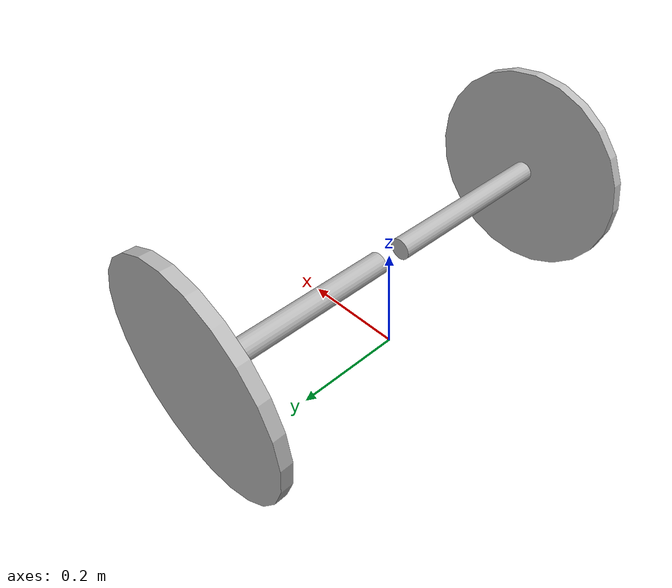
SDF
<?xml version="1.0" ?>
<sdf version="1.5">
  <model name='wheel'>
    <link name="left_link">
      <pose>0 0.38 0.2 0 1.5707 1.5707</pose>
      <inertial>
        <pose>0 0 0 0 0 0</pose>
        <mass>0.05</mass>
        <inertia>
          <ixx>5.0167e-4</ixx>
          <ixy>0</ixy>
          <ixz>0</ixz>
          <iyy>1e-3</iyy>
          <iyz>0</iyz>
          <izz>5.0167e-4</izz>
        </inertia>
      </inertial>
      <collision name="collision">
        <geometry>
          <cylinder>
            <radius>.2</radius>
            <length>.02</length>
          </cylinder>
        </geometry>
        <surface>
          <friction>
            <ode>
              <mu>1.0</mu>
              <mu2>50.0</mu2>
              <fdir1>0 0 1</fdir1>
              <slip1>0.0</slip1>
              <slip2>0.0</slip2>
            </ode>
          </friction>
          <contact>
            <ode>
              <min_depth>0.005</min_depth>
              <kp>1e8</kp>
            </ode>
          </contact>
        </surface>
      </collision>

      <visual name="visual">
        <geometry>
          <cylinder>
            <radius>.2</radius>
            <length>.02</length>
          </cylinder>
        </geometry>
      </visual>
    </link>

     <link name="left_stick">
      <pose>0 0.2 0.2 0 1.5707 1.5707</pose>
      <inertial>
        <pose>0 0 0 0 0 0</pose>
        <mass>1e-6</mass>
        <inertia>
          <ixx>1.031e-8</ixx>
          <ixy>0</ixy>
          <ixz>0</ixz>
          <iyy>2e-10</iyy>
          <iyz>0</iyz>
          <izz>1.031e-8</izz>
        </inertia>
      </inertial>
      <collision name="collision">
        <geometry>
          <cylinder>
            <radius>.02</radius>
            <length>0.35</length>
          </cylinder>
        </geometry>
      </collision>

      <visual name="visual">
        <geometry>
          <cylinder>
            <radius>.02</radius>
            <length>0.35</length>
          </cylinder>
        </geometry>
      </visual>
    </link>

    <link name="right_link">
      <pose>0 -0.38 0.2 0 1.5707 1.5707</pose>
      <inertial>
        <pose>0 0 0 0 0 0</pose>
        <mass>0.05</mass>
        <inertia>
          <ixx>5.0167e-4</ixx>
          <ixy>0</ixy>
          <ixz>0</ixz>
          <iyy>1e-3</iyy>
          <iyz>0</iyz>
          <izz>5.0167e-4</izz>
        </inertia>
      </inertial>
      <collision name="collision">
        <geometry>
          <cylinder>
            <radius>.2</radius>
            <length>.02</length>
          </cylinder>
        </geometry>
        <surface>
          <friction>
            <ode>
              <mu>1.0</mu>
              <mu2>50.0</mu2>
              <fdir1>0 0 1</fdir1>
              <slip1>0.0</slip1>
              <slip2>0.0</slip2>
            </ode>
          </friction>
          <contact>
            <ode>
              <min_depth>0.005</min_depth>
              <kp>1e8</kp>
            </ode>
          </contact>
        </surface>
      </collision>

      <visual name="visual">
        <geometry>
          <cylinder>
            <radius>.2</radius>
            <length>.02</length>
          </cylinder>
        </geometry>
      </visual>
    </link>
    <link name="right_stick">
      <pose>0 -0.2 0.2 0 1.5707 1.5707</pose>
      <inertial>
        <pose>0 0 0 0 0 0</pose>
        <mass>1e-6</mass>
        <inertia>
          <ixx>1.031e-8</ixx>
          <ixy>0</ixy>
          <ixz>0</ixz>
          <iyy>2e-10</iyy>
          <iyz>0</iyz>
          <izz>1.031e-8</izz>
        </inertia>
      </inertial>
      <collision name="collision">
        <geometry>
          <cylinder>
            <radius>.02</radius>
            <length>0.35</length>
          </cylinder>
        </geometry>
      </collision>

      <visual name="visual">
        <geometry>
          <cylinder>
            <radius>.02</radius>
            <length>0.35</length>
          </cylinder>
        </geometry>
      </visual>
    </link>

    <joint name="left_stick_joint" type="fixed">
      <child>left_link</child>
      <parent>iris::base_link</parent>
      <axis>
        <xyz>0 1 0</xyz>
          <upper>0</upper>
          <lower>0</lower>
          <effort>0</effort>
          <velocity>0</velocity>
      </axis>
    </joint>

  <joint name="left_wheel_joint" type="revolute">
      <child>left_stick</child>
      <parent>left_link</parent>
      <axis>
        <xyz>0 1 0</xyz>
        <limit>
          <upper>-1e+16</upper>
          <lower>1e+16</lower>
        </limit>
        <dynamics>
          <spring_reference>0</spring_reference>
          <spring_stiffness>0</spring_stiffness>
        </dynamics>
        <use_parent_model_frame>true</use_parent_model_frame>
      </axis>
    </joint>

   <joint name="right_stick_joint" type="fixed">
      <child>right_link</child>
      <parent>iris::base_link</parent>
      <axis>
        <xyz>0 1 0</xyz>
        <limit>
          <upper>0</upper>
          <lower>0</lower>
          <effort>0</effort>
          <velocity>0</velocity>
        </limit>
      </axis>
    </joint>

    <joint name="right_wheel_joint" type="revolute">
      <child>right_stick</child>
      <parent>right_link</parent>
      <axis>
        <xyz>0 1 0</xyz>
        <limit>
          <upper>-1e+16</upper>
          <lower>1e+16</lower>
        </limit>
        <dynamics>
          <spring_reference>0</spring_reference>
          <spring_stiffness>0</spring_stiffness>
        </dynamics>
        <use_parent_model_frame>true</use_parent_model_frame>
      </axis>
    </joint>

    <joint name="left_zc_joint" type="revolute">
      <child>left_link</child>
      <parent>left_stick</parent>
      <axis>
        <xyz>0 1 0</xyz>
        <limit>
          <upper>-1</upper>
          <lower>1</lower>
        </limit>
        <dynamics>
          <spring_reference>0</spring_reference>
          <spring_stiffness>0</spring_stiffness>
        </dynamics>
        <use_parent_model_frame>true</use_parent_model_frame>
      </axis>
    </joint>
    <joint name="right_zc_joint" type="revolute">
      <child>right_link</child>
      <parent>right_stick</parent>
      <axis>
        <xyz>0 1 0</xyz>
        <limit>
          <upper>-1</upper>
          <lower>1</lower>
        </limit>
        <dynamics>
          <spring_reference>0</spring_reference>
          <spring_stiffness>0</spring_stiffness>
        </dynamics>
        <use_parent_model_frame>true</use_parent_model_frame>
      </axis>
    </joint>

  </model>
</sdf>
